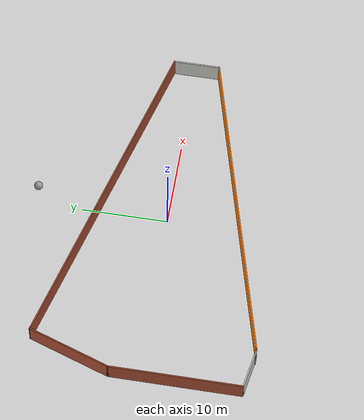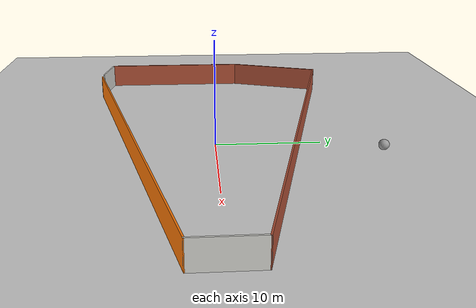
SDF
<sdf version="1.6">
 <world name="default">
  <model name="ground_plane">
   <static>1</static>
   <link name="link">
    <collision name="collision">
     <geometry><plane><normal>0 0 1</normal><size>100 100</size></plane></geometry>
     <surface><friction><ode><mu>100</mu><mu2>50</mu2></ode></friction></surface>
    </collision>
    <visual name="visual">
     <cast_shadows>0</cast_shadows>
     <geometry><plane><normal>0 0 1</normal><size>100 100</size></plane></geometry>
     <material>
      <script><uri>file://media/materials/scripts/gazebo.material</uri><name>Gazebo/Grey</name></script>
     </material>
    </visual>
   </link>
  </model>
  <model name="Building">
   <link name="Door_0">
    <pose>-16.0335 -12.5896 0 0 -0 0</pose>
    <visual name="Door_0_Visual">
     <pose>0 0 1 0 -0 0</pose>
     <geometry><box><size>0.9 0.17 2</size></box></geometry>
     <material>
      <script><uri>file://media/materials/scripts/gazebo.material</uri><name>Gazebo/Grey</name></script>
     </material>
    </visual>
    <collision name="Door_0_Collision">
     <pose>0 0 1 0 -0 0</pose>
     <geometry><box><size>0.9 0.17 2</size></box></geometry>
     <surface>
      <friction>
       <ode><mu>1</mu><mu2>1</mu2><fdir1>0 0 0</fdir1><slip1>0</slip1><slip2>0</slip2></ode>
       <torsional>
        <coefficient>1</coefficient>
        <patch_radius>0</patch_radius>
        <surface_radius>0</surface_radius>
        <use_patch_radius>1</use_patch_radius>
        <ode><slip>0</slip></ode>
       </torsional>
      </friction>
      <bounce><restitution_coefficient>0</restitution_coefficient><threshold>1e+06</threshold></bounce>
      <contact>
       <collide_without_contact>0</collide_without_contact>
       <collide_without_contact_bitmask>1</collide_without_contact_bitmask>
       <collide_bitmask>1</collide_bitmask>
       <ode>
        <soft_cfm>0</soft_cfm>
        <soft_erp>0.2</soft_erp>
        <kp>1e+13</kp>
        <kd>1</kd>
        <max_vel>0.01</max_vel>
        <min_depth>0</min_depth>
       </ode>
       <bullet>
        <split_impulse>1</split_impulse>
        <split_impulse_penetration_threshold>-0.01</split_impulse_penetration_threshold>
        <soft_cfm>0</soft_cfm>
        <soft_erp>0.2</soft_erp>
        <kp>1e+13</kp>
        <kd>1</kd>
       </bullet>
      </contact>
     </surface>
    </collision>
   </link>
   <link name="Wall_1">
    <pose>-20.481 -4.29272 0 0 -0 1.5708</pose>
    <visual name="Wall_1_Visual">
     <pose>0 0 1.25 0 -0 0</pose>
     <geometry><box><size>15.25 0.15 2.5</size></box></geometry>
     <material>
      <script><uri>file://media/materials/scripts/gazebo.material</uri><name>Gazebo/Bricks</name></script>
      <ambient>1 1 1 1</ambient>
     </material>
     <meta><layer>0</layer></meta>
    </visual>
    <collision name="Wall_1_Collision">
     <pose>0 0 1.25 0 -0 0</pose>
     <geometry><box><size>15.25 0.15 2.5</size></box></geometry>
     <surface>
      <friction>
       <ode><mu>1</mu><mu2>1</mu2><fdir1>0 0 0</fdir1><slip1>0</slip1><slip2>0</slip2></ode>
       <torsional>
        <coefficient>1</coefficient>
        <patch_radius>0</patch_radius>
        <surface_radius>0</surface_radius>
        <use_patch_radius>1</use_patch_radius>
        <ode><slip>0</slip></ode>
       </torsional>
      </friction>
      <bounce><restitution_coefficient>0</restitution_coefficient><threshold>1e+06</threshold></bounce>
      <contact>
       <collide_without_contact>0</collide_without_contact>
       <collide_without_contact_bitmask>1</collide_without_contact_bitmask>
       <collide_bitmask>1</collide_bitmask>
       <ode>
        <soft_cfm>0</soft_cfm>
        <soft_erp>0.2</soft_erp>
        <kp>1e+13</kp>
        <kd>1</kd>
        <max_vel>0.01</max_vel>
        <min_depth>0</min_depth>
       </ode>
       <bullet>
        <split_impulse>1</split_impulse>
        <split_impulse_penetration_threshold>-0.01</split_impulse_penetration_threshold>
        <soft_cfm>0</soft_cfm>
        <soft_erp>0.2</soft_erp>
        <kp>1e+13</kp>
        <kd>1</kd>
       </bullet>
      </contact>
     </surface>
    </collision>
   </link>
   <link name="Wall_10">
    <pose>-18.8821 7.91196 0 0 0 -1.90166</pose>
    <visual name="Wall_10_Visual">
     <pose>0 0 1.25 0 -0 0</pose>
     <geometry><box><size>9.99324 0.15 2.5</size></box></geometry>
     <material>
      <script><uri>file://media/materials/scripts/gazebo.material</uri><name>Gazebo/Bricks</name></script>
      <ambient>1 1 1 1</ambient>
     </material>
     <meta><layer>0</layer></meta>
    </visual>
    <collision name="Wall_10_Collision">
     <pose>0 0 1.25 0 -0 0</pose>
     <geometry><box><size>9.99324 0.15 2.5</size></box></geometry>
     <surface>
      <friction>
       <ode><mu>1</mu><mu2>1</mu2><fdir1>0 0 0</fdir1><slip1>0</slip1><slip2>0</slip2></ode>
       <torsional>
        <coefficient>1</coefficient>
        <patch_radius>0</patch_radius>
        <surface_radius>0</surface_radius>
        <use_patch_radius>1</use_patch_radius>
        <ode><slip>0</slip></ode>
       </torsional>
      </friction>
      <bounce><restitution_coefficient>0</restitution_coefficient><threshold>1e+06</threshold></bounce>
      <contact>
       <collide_without_contact>0</collide_without_contact>
       <collide_without_contact_bitmask>1</collide_without_contact_bitmask>
       <collide_bitmask>1</collide_bitmask>
       <ode>
        <soft_cfm>0</soft_cfm>
        <soft_erp>0.2</soft_erp>
        <kp>1e+13</kp>
        <kd>1</kd>
        <max_vel>0.01</max_vel>
        <min_depth>0</min_depth>
       </ode>
       <bullet>
        <split_impulse>1</split_impulse>
        <split_impulse_penetration_threshold>-0.01</split_impulse_penetration_threshold>
        <soft_cfm>0</soft_cfm>
        <soft_erp>0.2</soft_erp>
        <kp>1e+13</kp>
        <kd>1</kd>
       </bullet>
      </contact>
     </surface>
    </collision>
   </link>
   <link name="Wall_5">
    <pose>-18.4984 -12.1756 0 0 -0 2.97522</pose>
    <visual name="Wall_5_Visual">
     <pose>0 0 1.25 0 -0 0</pose>
     <geometry><box><size>4.17063 0.15 2.5</size></box></geometry>
     <material>
      <script><uri>file://media/materials/scripts/gazebo.material</uri><name>Gazebo/CeilingTiled</name></script>
      <ambient>1 1 1 1</ambient>
     </material>
     <meta><layer>0</layer></meta>
    </visual>
    <collision name="Wall_5_Collision">
     <pose>0 0 1.25 0 -0 0</pose>
     <geometry><box><size>4.17063 0.15 2.5</size></box></geometry>
     <surface>
      <friction>
       <ode><mu>1</mu><mu2>1</mu2><fdir1>0 0 0</fdir1><slip1>0</slip1><slip2>0</slip2></ode>
       <torsional>
        <coefficient>1</coefficient>
        <patch_radius>0</patch_radius>
        <surface_radius>0</surface_radius>
        <use_patch_radius>1</use_patch_radius>
        <ode><slip>0</slip></ode>
       </torsional>
      </friction>
      <bounce><restitution_coefficient>0</restitution_coefficient><threshold>1e+06</threshold></bounce>
      <contact>
       <collide_without_contact>0</collide_without_contact>
       <collide_without_contact_bitmask>1</collide_without_contact_bitmask>
       <collide_bitmask>1</collide_bitmask>
       <ode>
        <soft_cfm>0</soft_cfm>
        <soft_erp>0.2</soft_erp>
        <kp>1e+13</kp>
        <kd>1</kd>
        <max_vel>0.01</max_vel>
        <min_depth>0</min_depth>
       </ode>
       <bullet>
        <split_impulse>1</split_impulse>
        <split_impulse_penetration_threshold>-0.01</split_impulse_penetration_threshold>
        <soft_cfm>0</soft_cfm>
        <soft_erp>0.2</soft_erp>
        <kp>1e+13</kp>
        <kd>1</kd>
       </bullet>
      </contact>
     </surface>
    </collision>
   </link>
   <link name="Wall_7">
    <pose>2.44574 -7.73663 0 0 -0 0.261799</pose>
    <visual name="Wall_7_Visual">
     <pose>0 0 1.25 0 -0 0</pose>
     <geometry><box><size>37.5 0.15 2.5</size></box></geometry>
     <material>
      <script><uri>file://media/materials/scripts/gazebo.material</uri><name>Gazebo/Grey</name></script>
      <ambient>0.996078 0.47451 0.0196078 1</ambient>
     </material>
     <meta><layer>0</layer></meta>
    </visual>
    <collision name="Wall_7_Collision">
     <pose>0 0 1.25 0 -0 0</pose>
     <geometry><box><size>37.5 0.15 2.5</size></box></geometry>
     <surface>
      <friction>
       <ode><mu>1</mu><mu2>1</mu2><fdir1>0 0 0</fdir1><slip1>0</slip1><slip2>0</slip2></ode>
       <torsional>
        <coefficient>1</coefficient>
        <patch_radius>0</patch_radius>
        <surface_radius>0</surface_radius>
        <use_patch_radius>1</use_patch_radius>
        <ode><slip>0</slip></ode>
       </torsional>
      </friction>
      <bounce><restitution_coefficient>0</restitution_coefficient><threshold>1e+06</threshold></bounce>
      <contact>
       <collide_without_contact>0</collide_without_contact>
       <collide_without_contact_bitmask>1</collide_without_contact_bitmask>
       <collide_bitmask>1</collide_bitmask>
       <ode>
        <soft_cfm>0</soft_cfm>
        <soft_erp>0.2</soft_erp>
        <kp>1e+13</kp>
        <kd>1</kd>
        <max_vel>0.01</max_vel>
        <min_depth>0</min_depth>
       </ode>
       <bullet>
        <split_impulse>1</split_impulse>
        <split_impulse_penetration_threshold>-0.01</split_impulse_penetration_threshold>
        <soft_cfm>0</soft_cfm>
        <soft_erp>0.2</soft_erp>
        <kp>1e+13</kp>
        <kd>1</kd>
       </bullet>
      </contact>
     </surface>
    </collision>
   </link>
   <link name="Wall_8">
    <pose>20.4844 -0.228187 0 0 -0 1.5708</pose>
    <visual name="Wall_8_Visual">
     <pose>0 0 1.25 0 -0 0</pose>
     <geometry><box><size>5.5 0.15 2.5</size></box></geometry>
     <material>
      <script><uri>file://media/materials/scripts/gazebo.material</uri><name>Gazebo/CeilingTiled</name></script>
      <ambient>1 1 1 1</ambient>
     </material>
     <meta><layer>0</layer></meta>
    </visual>
    <collision name="Wall_8_Collision">
     <pose>0 0 1.25 0 -0 0</pose>
     <geometry><box><size>5.5 0.15 2.5</size></box></geometry>
     <surface>
      <friction>
       <ode><mu>1</mu><mu2>1</mu2><fdir1>0 0 0</fdir1><slip1>0</slip1><slip2>0</slip2></ode>
       <torsional>
        <coefficient>1</coefficient>
        <patch_radius>0</patch_radius>
        <surface_radius>0</surface_radius>
        <use_patch_radius>1</use_patch_radius>
        <ode><slip>0</slip></ode>
       </torsional>
      </friction>
      <bounce><restitution_coefficient>0</restitution_coefficient><threshold>1e+06</threshold></bounce>
      <contact>
       <collide_without_contact>0</collide_without_contact>
       <collide_without_contact_bitmask>1</collide_without_contact_bitmask>
       <collide_bitmask>1</collide_bitmask>
       <ode>
        <soft_cfm>0</soft_cfm>
        <soft_erp>0.2</soft_erp>
        <kp>1e+13</kp>
        <kd>1</kd>
        <max_vel>0.01</max_vel>
        <min_depth>0</min_depth>
       </ode>
       <bullet>
        <split_impulse>1</split_impulse>
        <split_impulse_penetration_threshold>-0.01</split_impulse_penetration_threshold>
        <soft_cfm>0</soft_cfm>
        <soft_erp>0.2</soft_erp>
        <kp>1e+13</kp>
        <kd>1</kd>
       </bullet>
      </contact>
     </surface>
    </collision>
   </link>
   <link name="Wall_9">
    <pose>1.60055 7.50673 0 0 -0 2.87979</pose>
    <visual name="Wall_9_Visual">
     <pose>0 0 1.25 0 -0 0</pose>
     <geometry><box><size>39.25 0.15 2.5</size></box></geometry>
     <material>
      <script><uri>file://media/materials/scripts/gazebo.material</uri><name>Gazebo/Bricks</name></script>
      <ambient>1 1 1 1</ambient>
     </material>
     <meta><layer>0</layer></meta>
    </visual>
    <collision name="Wall_9_Collision">
     <pose>0 0 1.25 0 -0 0</pose>
     <geometry><box><size>39.25 0.15 2.5</size></box></geometry>
     <surface>
      <friction>
       <ode><mu>1</mu><mu2>1</mu2><fdir1>0 0 0</fdir1><slip1>0</slip1><slip2>0</slip2></ode>
       <torsional>
        <coefficient>1</coefficient>
        <patch_radius>0</patch_radius>
        <surface_radius>0</surface_radius>
        <use_patch_radius>1</use_patch_radius>
        <ode><slip>0</slip></ode>
       </torsional>
      </friction>
      <bounce><restitution_coefficient>0</restitution_coefficient><threshold>1e+06</threshold></bounce>
      <contact>
       <collide_without_contact>0</collide_without_contact>
       <collide_without_contact_bitmask>1</collide_without_contact_bitmask>
       <collide_bitmask>1</collide_bitmask>
       <ode>
        <soft_cfm>0</soft_cfm>
        <soft_erp>0.2</soft_erp>
        <kp>1e+13</kp>
        <kd>1</kd>
        <max_vel>0.01</max_vel>
        <min_depth>0</min_depth>
       </ode>
       <bullet>
        <split_impulse>1</split_impulse>
        <split_impulse_penetration_threshold>-0.01</split_impulse_penetration_threshold>
        <soft_cfm>0</soft_cfm>
        <soft_erp>0.2</soft_erp>
        <kp>1e+13</kp>
        <kd>1</kd>
       </bullet>
      </contact>
     </surface>
    </collision>
   </link>
   <static>1</static>
   <pose>-0.0303 0.0864 0 0 -0 0</pose>
  </model>
  <model name="my_ball">
   <link name="link_0">
    <inertial>
     <mass>1</mass>
     <inertia><ixx>0.1</ixx><ixy>0</ixy><ixz>0</ixz><iyy>0.1</iyy><iyz>0</iyz><izz>0.1</izz></inertia>
    </inertial>
    <visual name="visual">
     <geometry><sphere><radius>0.5</radius></sphere></geometry>
     <material>
      <lighting>1</lighting>
      <script><uri>file://media/materials/scripts/gazebo.material</uri><name>Gazebo/Grey</name></script>
      <shader type="pixel"><normal_map>__default__</normal_map></shader>
      <ambient>1 1 1 1</ambient>
      <diffuse>1 1 1 1</diffuse>
      <specular>1 1 1 1</specular>
      <emissive>1 1 1 1</emissive>
     </material>
    </visual>
    <collision name="collision">
     <geometry><sphere><radius>0.5</radius></sphere></geometry>
     <surface>
      <friction>
       <ode><mu>1</mu><mu2>1</mu2><fdir1>0 0 0</fdir1><slip1>0</slip1><slip2>0</slip2></ode>
       <torsional>
        <coefficient>1</coefficient>
        <patch_radius>0</patch_radius>
        <surface_radius>0</surface_radius>
        <use_patch_radius>1</use_patch_radius>
        <ode><slip>0</slip></ode>
       </torsional>
      </friction>
      <bounce><restitution_coefficient>0</restitution_coefficient><threshold>1e+06</threshold></bounce>
      <contact>
       <collide_without_contact>0</collide_without_contact>
       <collide_without_contact_bitmask>1</collide_without_contact_bitmask>
       <collide_bitmask>1</collide_bitmask>
       <ode>
        <soft_cfm>0</soft_cfm>
        <soft_erp>0.2</soft_erp>
        <kp>1e+13</kp>
        <kd>1</kd>
        <max_vel>0.01</max_vel>
        <min_depth>0</min_depth>
       </ode>
       <bullet>
        <split_impulse>1</split_impulse>
        <split_impulse_penetration_threshold>-0.01</split_impulse_penetration_threshold>
        <soft_cfm>0</soft_cfm>
        <soft_erp>0.2</soft_erp>
        <kp>1e+13</kp>
        <kd>1</kd>
       </bullet>
      </contact>
     </surface>
    </collision>
   </link>
   <static>0</static>
   <pose>2.09761 15.5165 0.5 0 -0 0</pose>
  </model>
 </world>
</sdf>
